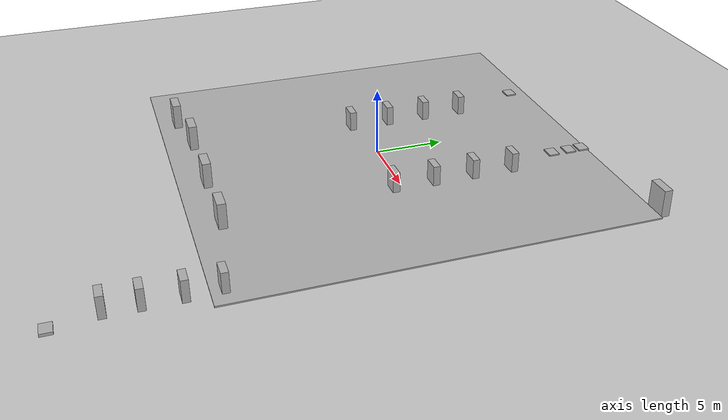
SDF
<?xml version="1.0" encoding="UTF-8"?>
<sdf version="1.9">
  <world name="garudanex_warehouse_hq">
    <physics type="ode">
      <max_step_size>0.004</max_step_size>
      <real_time_factor>1.0</real_time_factor>
      <real_time_update_rate>250</real_time_update_rate>
    </physics>
    <gravity>0 0 -9.8</gravity>
    <magnetic_field>6e-06 2.3e-05 -4.2e-05</magnetic_field>
    <atmosphere type="adiabatic"/>
    <scene>
      <grid>false</grid>
      <ambient>0.4 0.4 0.4 1</ambient>
      <background>0.7 0.7 0.7 1</background>
      <shadows>true</shadows>
    </scene>
    <model name="ground_plane">
      <static>true</static>
      <link name="link">
        <collision name="collision">
          <geometry>
            <plane>
              <normal>0 0 1</normal>
              <size>1 1</size>
            </plane>
          </geometry>
          <surface>
            <friction>
              <ode/>
            </friction>
            <bounce/>
            <contact/>
          </surface>
        </collision>
        <visual name="visual">
          <geometry>
            <plane>
              <normal>0 0 1</normal>
              <size>500 500</size>
            </plane>
          </geometry>
          <material>
            <ambient>0.8 0.8 0.8 1</ambient>
            <diffuse>0.8 0.8 0.8 1</diffuse>
            <specular>0.8 0.8 0.8 1</specular>
          </material>
        </visual>
        <pose>0 0 0 0 -0 0</pose>
        <inertial>
          <pose>0 0 0 0 -0 0</pose>
          <mass>1</mass>
          <inertia>
            <ixx>1</ixx>
            <ixy>0</ixy>
            <ixz>0</ixz>
            <iyy>1</iyy>
            <iyz>0</iyz>
            <izz>1</izz>
          </inertia>
        </inertial>
        <enable_wind>false</enable_wind>
      </link>
      <pose>0 0 0 0 -0 0</pose>
      <self_collide>false</self_collide>
    </model>
    <light name="sunUTC" type="directional">
      <pose>0 0 500 0 -0 0</pose>
      <cast_shadows>true</cast_shadows>
      <intensity>1</intensity>
      <direction>0.001 0.625 -0.78</direction>
      <diffuse>0.904 0.904 0.904 1</diffuse>
      <specular>0.271 0.271 0.271 1</specular>
      <attenuation>
        <range>2000</range>
        <linear>0</linear>
        <constant>1</constant>
        <quadratic>0</quadratic>
      </attenuation>
      <spot>
        <inner_angle>0</inner_angle>
        <outer_angle>0</outer_angle>
        <falloff>0</falloff>
      </spot>
    </light>
    <spherical_coordinates>
      <surface_model>EARTH_WGS84</surface_model>
      <world_frame_orientation>ENU</world_frame_orientation>
      <latitude_deg>47.397971057728974</latitude_deg>
      <longitude_deg> 8.546163739800146</longitude_deg>
      <elevation>0</elevation>
    </spherical_coordinates>

    <include>
      <uri>https://fuel.gazebosim.org/1.0/MovAi/models/Warehouse</uri>
      <name>warehouse</name>
      <pose>0 0 0.01 0 0 0</pose>
    </include>
    <include>
      <uri>https://fuel.gazebosim.org/1.0/MovAi/models/shelf_big</uri>
      <name>shelf_big_0</name>
      <pose>-9.34177 -13.5598 0 0 -0 0</pose>
    </include>
    <include>
      <uri>https://fuel.gazebosim.org/1.0/MovAi/models/shelf</uri>
      <name>shelf</name>
      <pose>-4.41528 -0.690987 0 0 -0 0</pose>
    </include>
    <include>
      <uri>https://fuel.gazebosim.org/1.0/MovAi/models/shelf</uri>
      <name>shelf_0</name>
      <pose>-4.41528 2.30697 0 0 -0 0</pose>
    </include>
    <include>
      <uri>https://fuel.gazebosim.org/1.0/MovAi/models/shelf</uri>
      <name>shelf_1</name>
      <pose>-4.41528 5.30708 0 0 -0 0</pose>
    </include>
    <include>
      <uri>https://fuel.gazebosim.org/1.0/MovAi/models/shelf</uri>
      <name>shelf_2</name>
      <pose>-4.41528 8.34352 0 0 -0 0</pose>
    </include>
    <include>
      <uri>https://fuel.gazebosim.org/1.0/MovAi/models/shelf</uri>
      <name>shelf_3</name>
      <pose>5.60144 8.34352 0 0 -0 0</pose>
    </include>
    <include>
      <uri>https://fuel.gazebosim.org/1.0/MovAi/models/shelf</uri>
      <name>shelf_4</name>
      <pose>5.60144 5.30708 0 0 -0 0</pose>
    </include>
    <include>
      <uri>https://fuel.gazebosim.org/1.0/MovAi/models/shelf</uri>
      <name>shelf_5</name>
      <pose>5.60144 -0.690987 0 0 -0 0</pose>
    </include>
    <include>
      <uri>https://fuel.gazebosim.org/1.0/MovAi/models/shelf</uri>
      <name>shelf_6</name>
      <pose>5.60144 2.30697 0 0 -0 0</pose>
    </include>
    <include>
      <uri>https://fuel.gazebosim.org/1.0/MovAi/models/pallet_box_mobile</uri>
      <name>pallet_box_mobile</name>
      <pose>4.4161 14.6952 0.01 0 -0 0</pose>
    </include>
    <include>
      <uri>https://fuel.gazebosim.org/1.0/MovAi/models/pallet_box_mobile</uri>
      <name>pallet_box_mobile_0</name>
      <pose>4.45415 13.6212 0.01 0 -0 0</pose>
    </include>
    <include>
      <uri>https://fuel.gazebosim.org/1.0/MovAi/models/pallet_box_mobile</uri>
      <name>pallet_box_mobile_1</name>
      <pose>4.4468 12.229 0.01 0 -0 0</pose>
    </include>
    <include>
      <uri>https://fuel.gazebosim.org/1.0/MovAi/models/pallet_box_mobile</uri>
      <name>pallet_box</name>
      <pose>-6.11913 13.7079 0.01 0 -0 0</pose>
    </include>
    <include>
      <uri>https://fuel.gazebosim.org/1.0/MovAi/models/shelf_big</uri>
      <name>shelf_big_1</name>
      <pose>13.9821 15.319 0 0 -0 0</pose>
    </include>
    <include>
      <uri>https://fuel.gazebosim.org/1.0/MovAi/models/shelf_big</uri>
      <name>shelf_big_2</name>
      <pose>6.19777 -12.9647 0 0 -0 0</pose>
    </include>
    <include>
      <uri>https://fuel.gazebosim.org/1.0/MovAi/models/shelf_big</uri>
      <name>shelf_big_3</name>
      <pose>0.594376 -12.9647 0 0 -0 0</pose>
    </include>
    <include>
      <uri>https://fuel.gazebosim.org/1.0/MovAi/models/shelf_big</uri>
      <name>shelf_big_4</name>
      <pose>-5.36284 -12.9647 0 0 -0 0</pose>
    </include>
    <include>
      <uri>https://fuel.gazebosim.org/1.0/MovAi/models/shelf</uri>
      <name>shelf_7</name>
      <pose>13.3818 -21.2416 0 0 -0 0</pose>
    </include>
    <include>
      <uri>https://fuel.gazebosim.org/1.0/MovAi/models/shelf</uri>
      <name>shelf_8</name>
      <pose>13.3818 -19.0028 0 0 -0 0</pose>
    </include>
    <include>
      <uri>https://fuel.gazebosim.org/1.0/MovAi/models/shelf</uri>
      <name>shelf_9</name>
      <pose>13.3818 -16.4478 0 0 -0 0</pose>
    </include>
    <include>
      <uri>https://fuel.gazebosim.org/1.0/MovAi/models/shelf</uri>
      <name>shelf_10</name>
      <pose>13.3818 -14.1028 0 0 -0 0</pose>
    </include>
    <include>
      <uri>https://fuel.gazebosim.org/1.0/MovAi/models/pallet_box_mobile</uri>
      <name>pallet_box_0</name>
      <pose>14.0222 -24.335 0.01 0 -0 0</pose>
    </include>
</world>
</sdf>

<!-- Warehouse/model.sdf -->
<sdf version="1.7">
  <model name="Warehouse">
    <static>true</static>
    <link name="link">
      <pose>0 0 0.05 0 0 0</pose>
      <visual name="visual">
        <geometry>
          <box>
            <size>30.0 30.0 0.1</size>
          </box>
        </geometry>
        <material>
          <ambient>0.7 0.7 0.7 1</ambient>
          <diffuse>0.7 0.7 0.7 1</diffuse>
        </material>
      </visual>    </link>
  </model>
</sdf>

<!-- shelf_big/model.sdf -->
<sdf version="1.7">
  <model name="shelf_big">
    <static>true</static>
    <link name="link">
      <pose>0 0 1.0 0 0 0</pose>
      <visual name="visual">
        <geometry>
          <box>
            <size>1.6 0.6 2.0</size>
          </box>
        </geometry>
        <material>
          <ambient>0.7 0.7 0.7 1</ambient>
          <diffuse>0.7 0.7 0.7 1</diffuse>
        </material>
      </visual>
      <collision name="collision">
        <geometry>
          <box>
            <size>1.6 0.6 2.0</size>
          </box>
        </geometry>
      </collision>
    </link>
  </model>
</sdf>

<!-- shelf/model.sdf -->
<sdf version="1.7">
  <model name="shelf">
    <static>true</static>
    <link name="link">
      <pose>0 0 0.8 0 0 0</pose>
      <visual name="visual">
        <geometry>
          <box>
            <size>1.2 0.5 1.6</size>
          </box>
        </geometry>
        <material>
          <ambient>0.7 0.7 0.7 1</ambient>
          <diffuse>0.7 0.7 0.7 1</diffuse>
        </material>
      </visual>
      <collision name="collision">
        <geometry>
          <box>
            <size>1.2 0.5 1.6</size>
          </box>
        </geometry>
      </collision>
    </link>
  </model>
</sdf>

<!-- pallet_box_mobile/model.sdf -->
<sdf version="1.7">
  <model name="pallet_box_mobile">
    <static>true</static>
    <link name="link">
      <pose>0 0 0.1 0 0 0</pose>
      <visual name="visual">
        <geometry>
          <box>
            <size>1.0 0.8 0.2</size>
          </box>
        </geometry>
        <material>
          <ambient>0.7 0.7 0.7 1</ambient>
          <diffuse>0.7 0.7 0.7 1</diffuse>
        </material>
      </visual>
      <collision name="collision">
        <geometry>
          <box>
            <size>1.0 0.8 0.2</size>
          </box>
        </geometry>
      </collision>
    </link>
  </model>
</sdf>
